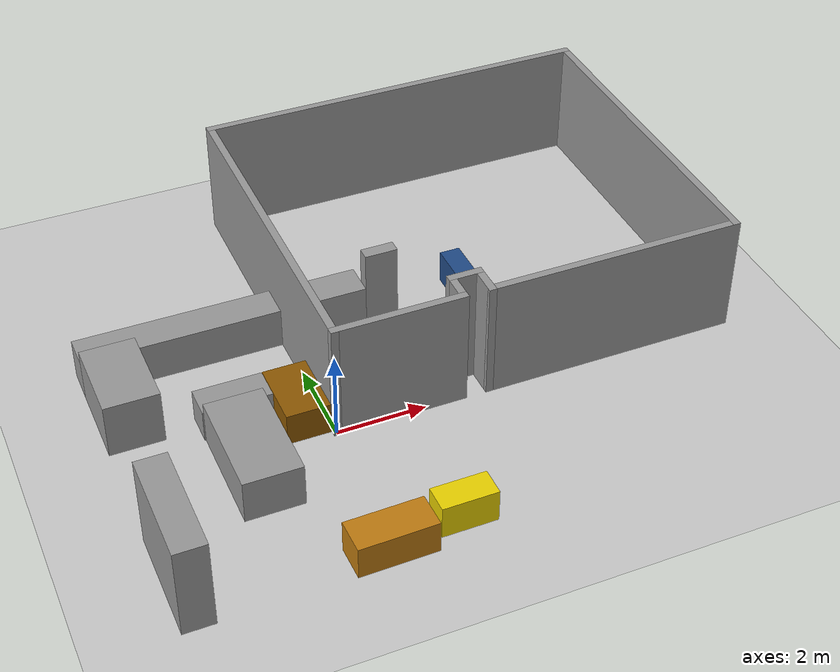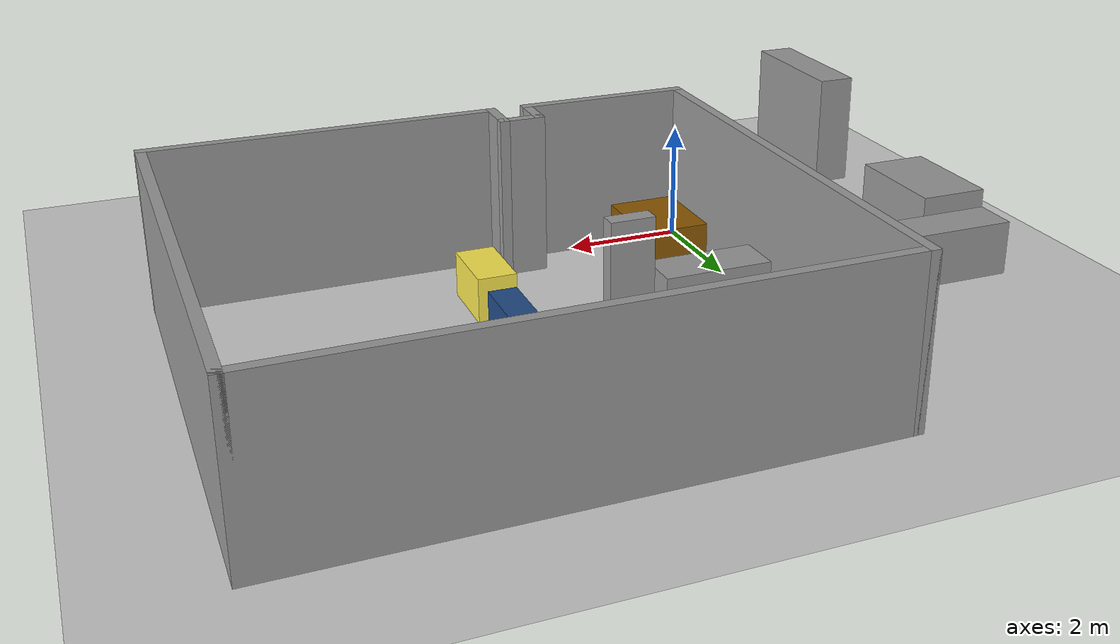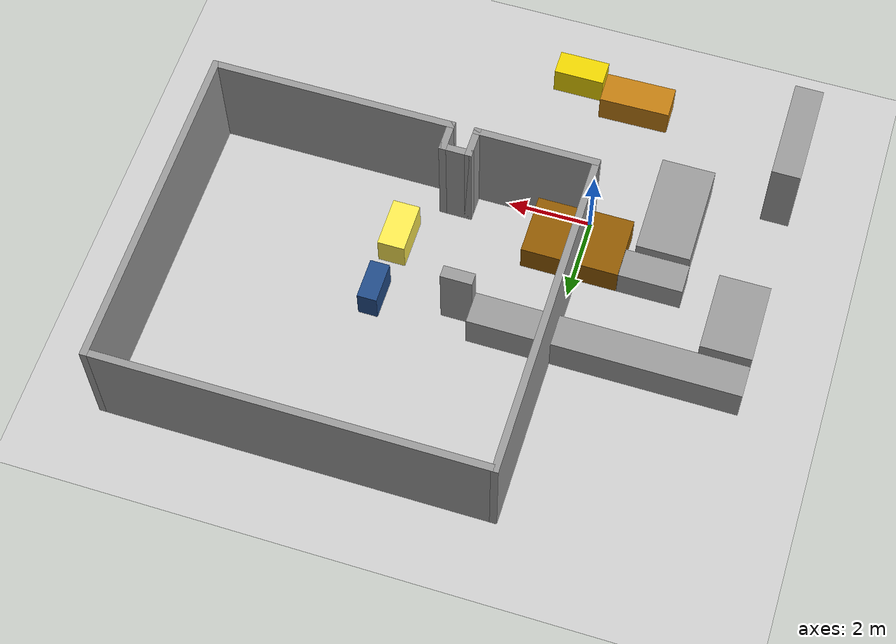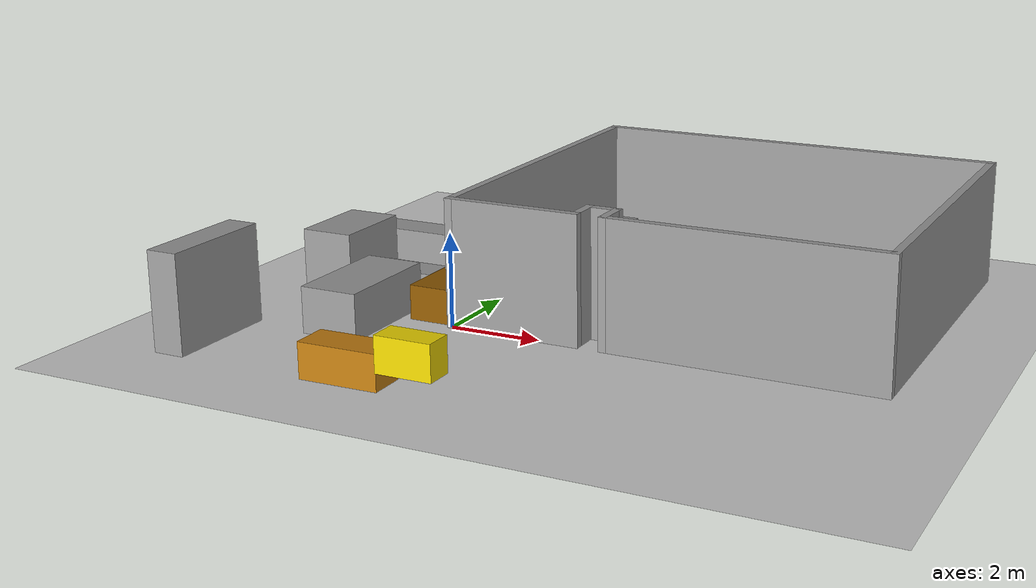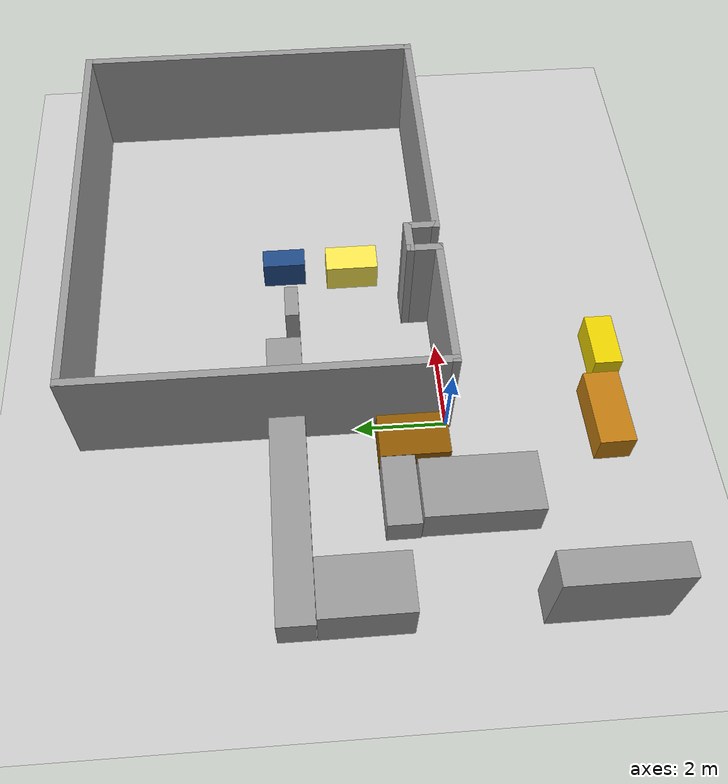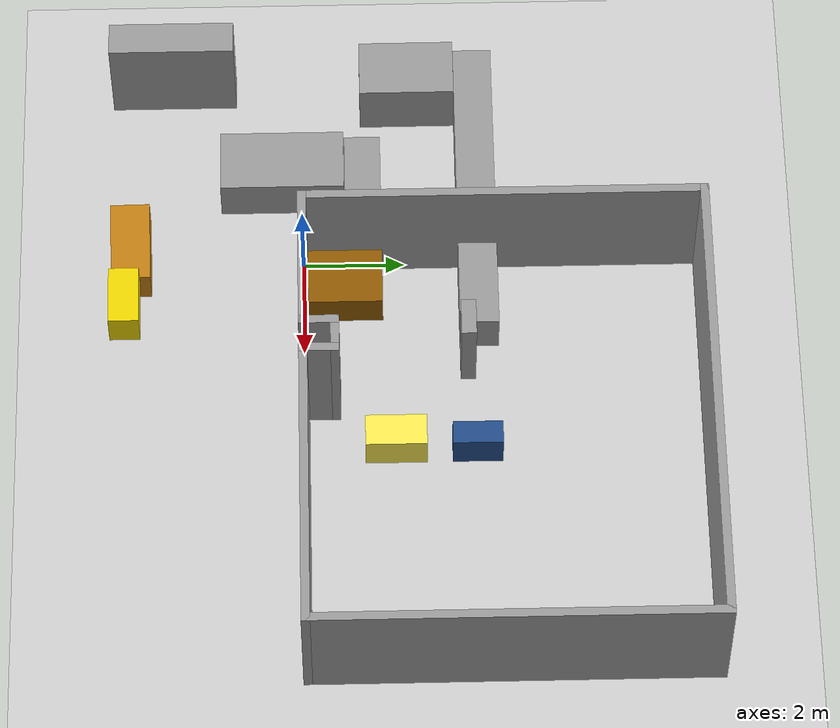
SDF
<sdf version="1.7">
 <world name="default">
  <scene><ambient>0.4 0.4 0.4 1</ambient><background>0.7 0.7 0.7 1</background><shadows>1</shadows></scene>
  <gravity>0 0 -9.8</gravity>
  <magnetic_field>6e-06 2.3e-05 -4.2e-05</magnetic_field>
  <atmosphere type="adiabatic"/>
  <physics type="ode">
   <max_step_size>0.001</max_step_size>
   <real_time_factor>1</real_time_factor>
   <real_time_update_rate>1000</real_time_update_rate>
  </physics>
  <include><uri>model://ground_plane</uri></include>
  <include><uri>model://sun</uri></include>
  <include><uri>model://lab</uri></include>
  <include>
   <uri>model://motoman_cabinet_and_table</uri>
   <pose>-3.90038 2.11609 0.635 0 -0 0.002242</pose>
  </include>
  <include><uri>model://metal_two_cabinets</uri><pose>-4.15995 -2.60213 1.05 0 -1e-06 -4.9e-05</pose></include>
  <include><uri>model://table_group_middle</uri><pose>0.11 0.809997 0.374995 6e-06 -0 0</pose></include>
  <include><uri>model://motoman_table</uri><pose>-1.81651 1.19792 0.375 -1e-06 0 0</pose></include>
  <include><uri>model://nasa_table</uri><pose>-1.91146 -0.411655 0.499941 4.8e-05 -0 0</pose></include>
  <include><uri>model://wall_table1</uri><pose>-0.212215 -3.44803 0.375 0 -0 0.017066</pose></include>
  <include><uri>model://wall_table2</uri><pose>1.24359 -3.55 0.375 0 -0 0.003502</pose></include>
  <include><uri>model://white_shelf</uri><pose>2.27632 3.22017 0.9075 0 0 -0.000797</pose></include>
  <include><uri>model://refrigarator_table</uri><pose>4.1775 1.77 0.3825 0 0 -4e-06</pose></include>
  <include><uri>model://printer_table</uri><pose>4.26675 3.36145 0.385 0 -0 1.8e-05</pose></include>
  <include><uri>model://kitchen_cabinets</uri><pose>-1.30099 3.45819 0.475 0 -0 -0.000798</pose></include>
 </world>
</sdf>

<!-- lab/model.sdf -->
<sdf version='1.7'>
  <model name='lab'>
    <pose>4.5875 3.9375 0 0 -0 0</pose>
    <link name='Wall_0'>
      <collision name='Wall_0_Collision'>
        <geometry>
          <box>
            <size>8.045 0.17 2.75</size>
          </box>
        </geometry>
        <pose>0 0 1.375 0 -0 0</pose>
      </collision>
      <visual name='Wall_0_Visual'>
        <pose>0 0 1.375 0 -0 0</pose>
        <geometry>
          <box>
            <size>8.045 0.17 2.75</size>
          </box>
        </geometry>
        <material>
          <script>
            <uri>file://media/materials/scripts/gazebo.material</uri>
            <name>Gazebo/Grey</name>
          </script>
          <ambient>1 1 1 1</ambient>
        </material>
        <meta>
          <layer>0</layer>
        </meta>
      </visual>
      <pose>-4.5875 0 0 0 -0 1.5708</pose>
    </link>
    <link name='Wall_1'>
      <collision name='Wall_1_Collision'>
        <geometry>
          <box>
            <size>9.345 0.17 2.75</size>
          </box>
        </geometry>
        <pose>0 0 1.375 0 -0 0</pose>
      </collision>
      <visual name='Wall_1_Visual'>
        <pose>0 0 1.375 0 -0 0</pose>
        <geometry>
          <box>
            <size>9.345 0.17 2.75</size>
          </box>
        </geometry>
        <material>
          <script>
            <uri>file://media/materials/scripts/gazebo.material</uri>
            <name>Gazebo/Grey</name>
          </script>
          <ambient>1 1 1 1</ambient>
        </material>
        <meta>
          <layer>0</layer>
        </meta>
      </visual>
      <pose>0 3.9375 0 0 -0 0</pose>
    </link>
    <link name='Wall_2'>
      <collision name='Wall_2_Collision'>
        <geometry>
          <box>
            <size>8.045 0.17 2.75</size>
          </box>
        </geometry>
        <pose>0 0 1.375 0 -0 0</pose>
      </collision>
      <visual name='Wall_2_Visual'>
        <pose>0 0 1.375 0 -0 0</pose>
        <geometry>
          <box>
            <size>8.045 0.17 2.75</size>
          </box>
        </geometry>
        <material>
          <script>
            <uri>file://media/materials/scripts/gazebo.material</uri>
            <name>Gazebo/Grey</name>
          </script>
          <ambient>1 1 1 1</ambient>
        </material>
        <meta>
          <layer>0</layer>
        </meta>
      </visual>
      <pose>4.5875 0 0 0 -0 -1.5708</pose>
    </link>
    <link name='Wall_3'>
      <collision name='Wall_3_Collision'>
        <geometry>
          <box>
            <size>5.91 0.17 2.75</size>
          </box>
        </geometry>
        <pose>0 0 1.375 0 -0 0</pose>
      </collision>
      <visual name='Wall_3_Visual'>
        <pose>0 0 1.375 0 -0 0</pose>
        <geometry>
          <box>
            <size>5.91 0.17 2.75</size>
          </box>
        </geometry>
        <material>
          <script>
            <uri>file://media/materials/scripts/gazebo.material</uri>
            <name>Gazebo/Grey</name>
          </script>
          <ambient>1 1 1 1</ambient>
        </material>
        <meta>
          <layer>0</layer>
        </meta>
      </visual>
      <pose>1.7175 -3.9375 0 0 -0 3.14159</pose>
    </link>
    <link name='Wall_4'>
      <collision name='Wall_4_Collision'>
        <geometry>
          <box>
            <size>0.785 0.17 2.75</size>
          </box>
        </geometry>
        <pose>0 0 1.375 0 -0 0</pose>
      </collision>
      <visual name='Wall_4_Visual'>
        <pose>0 0 1.375 0 -0 0</pose>
        <geometry>
          <box>
            <size>0.785 0.17 2.75</size>
          </box>
        </geometry>
        <material>
          <script>
            <uri>file://media/materials/scripts/gazebo.material</uri>
            <name>Gazebo/Grey</name>
          </script>
          <ambient>1 1 1 1</ambient>
        </material>
        <meta>
          <layer>0</layer>
        </meta>
      </visual>
      <pose>-1.1525 -3.63 0 0 -0 1.5708</pose>
    </link>
    <link name='Wall_5'>
      <collision name='Wall_5_Collision'>
        <geometry>
          <box>
            <size>0.785 0.17 2.75</size>
          </box>
        </geometry>
        <pose>0 0 1.375 0 -0 0</pose>
      </collision>
      <visual name='Wall_5_Visual'>
        <pose>0 0 1.375 0 -0 0</pose>
        <geometry>
          <box>
            <size>0.785 0.17 2.75</size>
          </box>
        </geometry>
        <material>
          <script>
            <uri>file://media/materials/scripts/gazebo.material</uri>
            <name>Gazebo/Grey</name>
          </script>
          <ambient>1 1 1 1</ambient>
        </material>
        <meta>
          <layer>0</layer>
        </meta>
      </visual>
      <pose>-1.46 -3.3225 0 0 -0 3.14159</pose>
    </link>
    <link name='Wall_6'>
      <collision name='Wall_6_Collision'>
        <geometry>
          <box>
            <size>0.785 0.17 2.75</size>
          </box>
        </geometry>
        <pose>0 0 1.375 0 -0 0</pose>
      </collision>
      <visual name='Wall_6_Visual'>
        <pose>0 0 1.375 0 -0 0</pose>
        <geometry>
          <box>
            <size>0.785 0.17 2.75</size>
          </box>
        </geometry>
        <material>
          <script>
            <uri>file://media/materials/scripts/gazebo.material</uri>
            <name>Gazebo/Grey</name>
          </script>
          <ambient>1 1 1 1</ambient>
        </material>
        <meta>
          <layer>0</layer>
        </meta>
      </visual>
      <pose>-1.7675 -3.63 0 0 -0 -1.5708</pose>
    </link>
    <link name='Wall_7'>
      <collision name='Wall_7_Collision'>
        <geometry>
          <box>
            <size>2.99 0.17 2.75</size>
          </box>
        </geometry>
        <pose>0 0 1.375 0 -0 0</pose>
      </collision>
      <visual name='Wall_7_Visual'>
        <pose>0 0 1.375 0 -0 0</pose>
        <geometry>
          <box>
            <size>2.99 0.17 2.75</size>
          </box>
        </geometry>
        <material>
          <script>
            <uri>file://media/materials/scripts/gazebo.material</uri>
            <name>Gazebo/Grey</name>
          </script>
          <ambient>1 1 1 1</ambient>
        </material>
        <meta>
          <layer>0</layer>
        </meta>
      </visual>
      <pose>-3.1775 -3.9375 0 0 -0 3.14159</pose>
    </link>
    <static>1</static>
  </model>
</sdf>

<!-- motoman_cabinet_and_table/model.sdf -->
<sdf version='1.7'>
  <model name='motoman_cabinet_and_table'>
    <link name='link'>
      <inertial>
        <mass>1</mass>
        <inertia>
          <ixx>0.166667</ixx>
          <ixy>0</ixy>
          <ixz>0</ixz>
          <iyy>0.166667</iyy>
          <iyz>0</iyz>
          <izz>0.166667</izz>
        </inertia>
        <pose>0 0 0 0 -0 0</pose>
      </inertial>
      <self_collide>0</self_collide>
      <enable_wind>0</enable_wind>
      <kinematic>0</kinematic>
      <pose>0 0 0 0 -0 0</pose>
      <gravity>1</gravity>
      <visual name='visual'>
        <geometry>
          <box>
            <size>1.2 1.9 1.27</size>
          </box>
        </geometry>
        <material>
          <script>
            <name>Gazebo/Grey</name>
            <uri>file://media/materials/scripts/gazebo.material</uri>
          </script>
          <shader type='pixel'>
            <normal_map>__default__</normal_map>
          </shader>
          <ambient>0.3 0.3 0.3 1</ambient>
          <diffuse>0.7 0.7 0.7 1</diffuse>
          <specular>0.01 0.01 0.01 1</specular>
          <emissive>0 0 0 1</emissive>
        </material>
        <pose>0 0 0 0 -0 0</pose>
        <transparency>0</transparency>
        <cast_shadows>1</cast_shadows>
      </visual>
      <collision name='collision'>
        <laser_retro>0</laser_retro>
        <max_contacts>10</max_contacts>
        <pose>0 0 0 0 -0 0</pose>
        <geometry>
          <box>
            <size>1.2 1.9 1.27</size>
          </box>
        </geometry>
        <surface>
          <friction>
            <ode>
              <mu>100</mu>
              <mu2>50</mu2>
              <fdir1>0 0 0</fdir1>
              <slip1>0</slip1>
              <slip2>0</slip2>
            </ode>
            <torsional>
              <coefficient>1</coefficient>
              <patch_radius>0</patch_radius>
              <surface_radius>0</surface_radius>
              <use_patch_radius>1</use_patch_radius>
              <ode>
                <slip>0</slip>
              </ode>
            </torsional>
          </friction>
          <bounce>
            <restitution_coefficient>0</restitution_coefficient>
            <threshold>1e+06</threshold>
          </bounce>
          <contact>
            <collide_without_contact>0</collide_without_contact>
            <collide_without_contact_bitmask>1</collide_without_contact_bitmask>
            <collide_bitmask>1</collide_bitmask>
            <ode>
              <soft_cfm>0</soft_cfm>
              <soft_erp>0.2</soft_erp>
              <kp>1e+13</kp>
              <kd>1</kd>
              <max_vel>0.01</max_vel>
              <min_depth>0</min_depth>
            </ode>
            <bullet>
              <split_impulse>1</split_impulse>
              <split_impulse_penetration_threshold>-0.01</split_impulse_penetration_threshold>
              <soft_cfm>0</soft_cfm>
              <soft_erp>0.2</soft_erp>
              <kp>1e+13</kp>
              <kd>1</kd>
            </bullet>
          </contact>
        </surface>
      </collision>
    </link>
    <static>0</static>
    <allow_auto_disable>1</allow_auto_disable>
  </model>
</sdf>

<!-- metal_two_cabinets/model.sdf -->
<sdf version='1.7'>
  <model name='metal_two_cabinets'>
    <link name='link_0'>
      <inertial>
        <mass>6.90915</mass>
        <inertia>
          <ixx>9.92803</ixx>
          <ixy>0</ixy>
          <ixz>0</ixz>
          <iyy>8.50819</iyy>
          <iyz>0</iyz>
          <izz>2.57136</izz>
        </inertia>
        <pose>0 0 0 0 -0 0</pose>
      </inertial>
      <pose>0 0 0 0 -0 0</pose>
      <gravity>1</gravity>
      <self_collide>0</self_collide>
      <kinematic>0</kinematic>
      <enable_wind>0</enable_wind>
      <visual name='visual'>
        <pose>0 0 0 0 -0 0</pose>
        <geometry>
          <box>
            <size>0.68 2.5 2.1</size>
          </box>
        </geometry>
        <material>
          <lighting>1</lighting>
          <script>
            <uri>file://media/materials/scripts/gazebo.material</uri>
            <name>Gazebo/Grey</name>
          </script>
          <shader type='pixel'>
            <normal_map>__default__</normal_map>
          </shader>
          <ambient>0.333 0.341 0.325 1</ambient>
          <diffuse>0.333 0.341 0.325 1</diffuse>
          <specular>0.333 0.341 0.325 1</specular>
          <emissive>0.333 0.341 0.325 1</emissive>
        </material>
        <transparency>0</transparency>
        <cast_shadows>1</cast_shadows>
      </visual>
      <collision name='collision'>
        <laser_retro>0</laser_retro>
        <max_contacts>10</max_contacts>
        <pose>0 0 0 0 -0 0</pose>
        <geometry>
          <box>
            <size>0.68 2.5 2.1</size>
          </box>
        </geometry>
        <surface>
          <friction>
            <ode>
              <mu>100</mu>
              <mu2>50</mu2>
              <fdir1>0 0 0</fdir1>
              <slip1>0</slip1>
              <slip2>0</slip2>
            </ode>
            <torsional>
              <coefficient>1</coefficient>
              <patch_radius>0</patch_radius>
              <surface_radius>0</surface_radius>
              <use_patch_radius>1</use_patch_radius>
              <ode>
                <slip>0</slip>
              </ode>
            </torsional>
          </friction>
          <bounce>
            <restitution_coefficient>0</restitution_coefficient>
            <threshold>1e+06</threshold>
          </bounce>
          <contact>
            <collide_without_contact>0</collide_without_contact>
            <collide_without_contact_bitmask>1</collide_without_contact_bitmask>
            <collide_bitmask>1</collide_bitmask>
            <ode>
              <soft_cfm>0</soft_cfm>
              <soft_erp>0.2</soft_erp>
              <kp>1e+13</kp>
              <kd>1</kd>
              <max_vel>0.01</max_vel>
              <min_depth>0</min_depth>
            </ode>
            <bullet>
              <split_impulse>1</split_impulse>
              <split_impulse_penetration_threshold>-0.01</split_impulse_penetration_threshold>
              <soft_cfm>0</soft_cfm>
              <soft_erp>0.2</soft_erp>
              <kp>1e+13</kp>
              <kd>1</kd>
            </bullet>
          </contact>
        </surface>
      </collision>
    </link>
    <static>0</static>
    <allow_auto_disable>1</allow_auto_disable>
  </model>
</sdf>

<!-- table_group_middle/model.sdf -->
<sdf version='1.7'>
  <model name='table_group_middle'>
    <link name='link'>
      <inertial>
        <mass>1</mass>
        <inertia>
          <ixx>0.166667</ixx>
          <ixy>0</ixy>
          <ixz>0</ixz>
          <iyy>0.166667</iyy>
          <iyz>0</iyz>
          <izz>0.166667</izz>
        </inertia>
        <pose>0 0 0 0 -0 0</pose>
      </inertial>
      <self_collide>0</self_collide>
      <enable_wind>0</enable_wind>
      <kinematic>0</kinematic>
      <pose>0 0 0 0 -0 0</pose>
      <gravity>1</gravity>
      <visual name='visual'>
        <geometry>
          <box>
            <size>2.32 1.5 0.75</size>
          </box>
        </geometry>
        <material>
          <script>
            <name>Gazebo/Grey</name>
            <uri>file://media/materials/scripts/gazebo.material</uri>
          </script>
          <shader type='pixel'>
            <normal_map>__default__</normal_map>
          </shader>
          <ambient>0.561 0.349 0.008 1</ambient>
          <diffuse>0.561 0.349 0.008 1</diffuse>
          <specular>0.561 0.349 0.008 1</specular>
          <emissive>0 0 0 1</emissive>
        </material>
        <pose>0 0 0 0 -0 0</pose>
        <transparency>0</transparency>
        <cast_shadows>1</cast_shadows>
      </visual>
      <collision name='collision'>
        <laser_retro>0</laser_retro>
        <max_contacts>10</max_contacts>
        <pose>0 0 0 0 -0 0</pose>
        <geometry>
          <box>
            <size>2.32 1.5 0.75</size>
          </box>
        </geometry>
        <surface>
          <friction>
            <ode>
              <mu>100</mu>
              <mu2>50</mu2>
              <fdir1>0 0 0</fdir1>
              <slip1>0</slip1>
              <slip2>0</slip2>
            </ode>
            <torsional>
              <coefficient>1</coefficient>
              <patch_radius>0</patch_radius>
              <surface_radius>0</surface_radius>
              <use_patch_radius>1</use_patch_radius>
              <ode>
                <slip>0</slip>
              </ode>
            </torsional>
          </friction>
          <bounce>
            <restitution_coefficient>0</restitution_coefficient>
            <threshold>1e+06</threshold>
          </bounce>
          <contact>
            <collide_without_contact>0</collide_without_contact>
            <collide_without_contact_bitmask>1</collide_without_contact_bitmask>
            <collide_bitmask>1</collide_bitmask>
            <ode>
              <soft_cfm>0</soft_cfm>
              <soft_erp>0.2</soft_erp>
              <kp>1e+13</kp>
              <kd>1</kd>
              <max_vel>0.01</max_vel>
              <min_depth>0</min_depth>
            </ode>
            <bullet>
              <split_impulse>1</split_impulse>
              <split_impulse_penetration_threshold>-0.01</split_impulse_penetration_threshold>
              <soft_cfm>0</soft_cfm>
              <soft_erp>0.2</soft_erp>
              <kp>1e+13</kp>
              <kd>1</kd>
            </bullet>
          </contact>
        </surface>
      </collision>
    </link>
    <static>0</static>
    <allow_auto_disable>1</allow_auto_disable>
  </model>
</sdf>

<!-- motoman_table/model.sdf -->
<sdf version='1.7'>
  <model name='motoman_table'>
    <link name='link'>
      <inertial>
        <mass>1</mass>
        <inertia>
          <ixx>0.166667</ixx>
          <ixy>0</ixy>
          <ixz>0</ixz>
          <iyy>0.166667</iyy>
          <iyz>0</iyz>
          <izz>0.166667</izz>
        </inertia>
        <pose>0 0 0 0 -0 0</pose>
      </inertial>
      <self_collide>0</self_collide>
      <enable_wind>0</enable_wind>
      <kinematic>0</kinematic>
      <pose>0 0 0 0 -0 0</pose>
      <gravity>1</gravity>
      <visual name='visual'>
        <geometry>
          <box>
            <size>1.52 0.72 0.75</size>
          </box>
        </geometry>
        <material>
          <script>
            <name>Gazebo/Grey</name>
            <uri>file://media/materials/scripts/gazebo.material</uri>
          </script>
          <shader type='pixel'>
            <normal_map>__default__</normal_map>
          </shader>
          <ambient>0.827 0.843 0.812 1</ambient>
          <diffuse>0.729 0.741 0.714 1</diffuse>
          <specular>0.01 0.01 0.01 1</specular>
          <emissive>0 0 0 1</emissive>
        </material>
        <pose>0 0 0 0 -0 0</pose>
        <transparency>0</transparency>
        <cast_shadows>1</cast_shadows>
      </visual>
      <collision name='collision'>
        <laser_retro>0</laser_retro>
        <max_contacts>10</max_contacts>
        <pose>0 0 0 0 -0 0</pose>
        <geometry>
          <box>
            <size>1.52 0.72 0.75</size>
          </box>
        </geometry>
        <surface>
          <friction>
            <ode>
              <mu>100</mu>
              <mu2>50</mu2>
              <fdir1>0 0 0</fdir1>
              <slip1>0</slip1>
              <slip2>0</slip2>
            </ode>
            <torsional>
              <coefficient>1</coefficient>
              <patch_radius>0</patch_radius>
              <surface_radius>0</surface_radius>
              <use_patch_radius>1</use_patch_radius>
              <ode>
                <slip>0</slip>
              </ode>
            </torsional>
          </friction>
          <bounce>
            <restitution_coefficient>0</restitution_coefficient>
            <threshold>1e+06</threshold>
          </bounce>
          <contact>
            <collide_without_contact>0</collide_without_contact>
            <collide_without_contact_bitmask>1</collide_without_contact_bitmask>
            <collide_bitmask>1</collide_bitmask>
            <ode>
              <soft_cfm>0</soft_cfm>
              <soft_erp>0.2</soft_erp>
              <kp>1e+13</kp>
              <kd>1</kd>
              <max_vel>0.01</max_vel>
              <min_depth>0</min_depth>
            </ode>
            <bullet>
              <split_impulse>1</split_impulse>
              <split_impulse_penetration_threshold>-0.01</split_impulse_penetration_threshold>
              <soft_cfm>0</soft_cfm>
              <soft_erp>0.2</soft_erp>
              <kp>1e+13</kp>
              <kd>1</kd>
            </bullet>
          </contact>
        </surface>
      </collision>
    </link>
    <static>0</static>
    <allow_auto_disable>1</allow_auto_disable>
  </model>
</sdf>

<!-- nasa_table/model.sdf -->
<sdf version='1.7'>
  <model name='nasa_table'>
    <link name='link'>
      <inertial>
        <mass>1</mass>
        <inertia>
          <ixx>0.166667</ixx>
          <ixy>0</ixy>
          <ixz>0</ixz>
          <iyy>0.166667</iyy>
          <iyz>0</iyz>
          <izz>0.166667</izz>
        </inertia>
        <pose>0 0 0 0 -0 0</pose>
      </inertial>
      <self_collide>0</self_collide>
      <enable_wind>0</enable_wind>
      <kinematic>0</kinematic>
      <pose>0 0 0 0 -0 0</pose>
      <gravity>1</gravity>
      <visual name='visual'>
        <geometry>
          <box>
            <size>1.28 2.47 1</size>
          </box>
        </geometry>
        <material>
          <script>
            <name>Gazebo/Grey</name>
            <uri>file://media/materials/scripts/gazebo.material</uri>
          </script>
          <shader type='pixel'>
            <normal_map>__default__</normal_map>
          </shader>
          <ambient>0.18 0.204 0.212 1</ambient>
          <diffuse>0.18 0.204 0.212 1</diffuse>
          <specular>0.01 0.01 0.01 1</specular>
          <emissive>0 0 0 1</emissive>
        </material>
        <pose>0 0 0 0 -0 0</pose>
        <transparency>0</transparency>
        <cast_shadows>1</cast_shadows>
      </visual>
      <collision name='collision'>
        <laser_retro>0</laser_retro>
        <max_contacts>10</max_contacts>
        <pose>0 0 0 0 -0 0</pose>
        <geometry>
          <box>
            <size>1.28 2.47 1</size>
          </box>
        </geometry>
        <surface>
          <friction>
            <ode>
              <mu>100</mu>
              <mu2>0</mu2>
              <fdir1>0 0 0</fdir1>
              <slip1>0</slip1>
              <slip2>0</slip2>
            </ode>
            <torsional>
              <coefficient>1</coefficient>
              <patch_radius>0</patch_radius>
              <surface_radius>0</surface_radius>
              <use_patch_radius>1</use_patch_radius>
              <ode>
                <slip>0</slip>
              </ode>
            </torsional>
          </friction>
          <bounce>
            <restitution_coefficient>0</restitution_coefficient>
            <threshold>1e+06</threshold>
          </bounce>
          <contact>
            <collide_without_contact>0</collide_without_contact>
            <collide_without_contact_bitmask>1</collide_without_contact_bitmask>
            <collide_bitmask>1</collide_bitmask>
            <ode>
              <soft_cfm>0</soft_cfm>
              <soft_erp>0.2</soft_erp>
              <kp>1e+13</kp>
              <kd>1</kd>
              <max_vel>0.01</max_vel>
              <min_depth>0</min_depth>
            </ode>
            <bullet>
              <split_impulse>1</split_impulse>
              <split_impulse_penetration_threshold>-0.01</split_impulse_penetration_threshold>
              <soft_cfm>0</soft_cfm>
              <soft_erp>0.2</soft_erp>
              <kp>1e+13</kp>
              <kd>1</kd>
            </bullet>
          </contact>
        </surface>
      </collision>
    </link>
    <static>0</static>
    <allow_auto_disable>1</allow_auto_disable>
  </model>
</sdf>

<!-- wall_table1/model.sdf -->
<sdf version='1.7'>
  <model name='wall_table1'>
    <link name='link'>
      <inertial>
        <mass>1</mass>
        <inertia>
          <ixx>0.166667</ixx>
          <ixy>0</ixy>
          <ixz>0</ixz>
          <iyy>0.166667</iyy>
          <iyz>0</iyz>
          <izz>0.166667</izz>
        </inertia>
        <pose>0 0 0 0 -0 0</pose>
      </inertial>
      <self_collide>0</self_collide>
      <enable_wind>0</enable_wind>
      <kinematic>0</kinematic>
      <pose>0 0 0 0 -0 0</pose>
      <gravity>1</gravity>
      <visual name='visual'>
        <geometry>
          <box>
            <size>1.7 0.78 0.75</size>
          </box>
        </geometry>
        <material>
          <script>
            <name>Gazebo/Grey</name>
            <uri>file://media/materials/scripts/gazebo.material</uri>
          </script>
          <shader type='pixel'>
            <normal_map>__default__</normal_map>
          </shader>
          <ambient>0.757 0.49 0.067 1</ambient>
          <diffuse>0.757 0.49 0.067 1</diffuse>
          <specular>0.01 0.01 0.01 1</specular>
          <emissive>0 0 0 1</emissive>
        </material>
        <pose>0 0 0 0 -0 0</pose>
        <transparency>0</transparency>
        <cast_shadows>1</cast_shadows>
      </visual>
      <collision name='collision'>
        <laser_retro>0</laser_retro>
        <max_contacts>10</max_contacts>
        <pose>0 0 0 0 -0 0</pose>
        <geometry>
          <box>
            <size>1.7 0.78 0.75</size>
          </box>
        </geometry>
        <surface>
          <friction>
            <ode>
              <mu>1</mu>
              <mu2>1</mu2>
              <fdir1>0 0 0</fdir1>
              <slip1>0</slip1>
              <slip2>0</slip2>
            </ode>
            <torsional>
              <coefficient>1</coefficient>
              <patch_radius>0</patch_radius>
              <surface_radius>0</surface_radius>
              <use_patch_radius>1</use_patch_radius>
              <ode>
                <slip>0</slip>
              </ode>
            </torsional>
          </friction>
          <bounce>
            <restitution_coefficient>0</restitution_coefficient>
            <threshold>1e+06</threshold>
          </bounce>
          <contact>
            <collide_without_contact>0</collide_without_contact>
            <collide_without_contact_bitmask>1</collide_without_contact_bitmask>
            <collide_bitmask>1</collide_bitmask>
            <ode>
              <soft_cfm>0</soft_cfm>
              <soft_erp>0.2</soft_erp>
              <kp>1e+13</kp>
              <kd>1</kd>
              <max_vel>0.01</max_vel>
              <min_depth>0</min_depth>
            </ode>
            <bullet>
              <split_impulse>1</split_impulse>
              <split_impulse_penetration_threshold>-0.01</split_impulse_penetration_threshold>
              <soft_cfm>0</soft_cfm>
              <soft_erp>0.2</soft_erp>
              <kp>1e+13</kp>
              <kd>1</kd>
            </bullet>
          </contact>
        </surface>
      </collision>
    </link>
    <static>0</static>
    <allow_auto_disable>1</allow_auto_disable>
  </model>
</sdf>

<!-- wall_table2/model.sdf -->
<sdf version='1.7'>
  <model name='wall_table2'>
    <link name='link'>
      <inertial>
        <mass>15</mass>
        <inertia>
          <ixx>15.166667</ixx>
          <ixy>0</ixy>
          <ixz>0</ixz>
          <iyy>15.166667</iyy>
          <iyz>0</iyz>
          <izz>15.166667</izz>
        </inertia>
        <pose>0 0 0.385 0 -0 0</pose>
      </inertial>
      <self_collide>0</self_collide>
      <enable_wind>0</enable_wind>
      <kinematic>0</kinematic>
      <pose>0 0 0 0 -0 0</pose>
      <gravity>1</gravity>
      <visual name='visual'>
        <geometry>
          <box>
            <size>1.2 0.6 0.75</size>
          </box>
        </geometry>
        <material>
          <script>
            <name>Gazebo/Grey</name>
            <uri>file://media/materials/scripts/gazebo.material</uri>
          </script>
          <shader type='pixel'>
            <normal_map>__default__</normal_map>
          </shader>
          <ambient>0.929 0.831 0 1</ambient>
          <diffuse>0.929 0.831 0 1</diffuse>
          <specular>0.01 0.01 0.01 1</specular>
          <emissive>0 0 0 1</emissive>
        </material>
        <pose>0 0 0.385 0 -0 0</pose>
        <transparency>0</transparency>
        <cast_shadows>1</cast_shadows>
      </visual>
      <collision name='collision'>
        <laser_retro>0</laser_retro>
        <max_contacts>10</max_contacts>
        <pose>0 0 0.385 0 -0 0</pose>
        <geometry>
          <box>
            <size>1.2 0.6 0.75</size>
          </box>
        </geometry>
        <surface>
          <friction>
            <ode>
              <mu>100</mu>
              <mu2>50</mu2>
              <fdir1>0 0 0</fdir1>
              <slip1>0</slip1>
              <slip2>0</slip2>
            </ode>
            <torsional>
              <coefficient>1</coefficient>
              <patch_radius>0</patch_radius>
              <surface_radius>0</surface_radius>
              <use_patch_radius>1</use_patch_radius>
              <ode>
                <slip>0</slip>
              </ode>
            </torsional>
          </friction>
          <bounce>
            <restitution_coefficient>0</restitution_coefficient>
            <threshold>1e+06</threshold>
          </bounce>
          <contact>
            <collide_without_contact>0</collide_without_contact>
            <collide_without_contact_bitmask>1</collide_without_contact_bitmask>
            <collide_bitmask>1</collide_bitmask>
            <ode>
              <soft_cfm>0</soft_cfm>
              <soft_erp>0.2</soft_erp>
              <kp>1e+13</kp>
              <kd>1</kd>
              <max_vel>0.01</max_vel>
              <min_depth>0</min_depth>
            </ode>
            <bullet>
              <split_impulse>1</split_impulse>
              <split_impulse_penetration_threshold>-0.01</split_impulse_penetration_threshold>
              <soft_cfm>0</soft_cfm>
              <soft_erp>0.2</soft_erp>
              <kp>1e+13</kp>
              <kd>1</kd>
            </bullet>
          </contact>
        </surface>
      </collision>
    </link>
    <static>0</static>
    <allow_auto_disable>1</allow_auto_disable>
  </model>
</sdf>

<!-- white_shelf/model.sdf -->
<sdf version='1.7'>
  <model name='white_shelf'>
    <link name='link'>
      <inertial>
        <mass>1</mass>
        <inertia>
          <ixx>0.166667</ixx>
          <ixy>0</ixy>
          <ixz>0</ixz>
          <iyy>0.166667</iyy>
          <iyz>0</iyz>
          <izz>0.166667</izz>
        </inertia>
        <pose>0 0 0 0 -0 0</pose>
      </inertial>
      <self_collide>0</self_collide>
      <enable_wind>0</enable_wind>
      <kinematic>0</kinematic>
      <pose>0 0 0 0 -0 0</pose>
      <gravity>1</gravity>
      <visual name='visual'>
        <geometry>
          <box>
            <size>0.755 0.295 1.815</size>
          </box>
        </geometry>
        <material>
          <script>
            <name>Gazebo/Grey</name>
            <uri>file://media/materials/scripts/gazebo.material</uri>
          </script>
          <shader type='pixel'>
            <normal_map>__default__</normal_map>
          </shader>
          <ambient>0.933 0.933 0.925 1</ambient>
          <diffuse>0.933 0.933 0.925 1</diffuse>
          <specular>0.01 0.01 0.01 1</specular>
          <emissive>0 0 0 1</emissive>
        </material>
        <pose>0 0 0 0 -0 0</pose>
        <transparency>0</transparency>
        <cast_shadows>1</cast_shadows>
      </visual>
      <collision name='collision'>
        <laser_retro>0</laser_retro>
        <max_contacts>10</max_contacts>
        <pose>0 0 0 0 -0 0</pose>
        <geometry>
          <box>
            <size>0.755 0.295 1.815</size>
          </box>
        </geometry>
        <surface>
          <friction>
            <ode>
              <mu>1</mu>
              <mu2>1</mu2>
              <fdir1>0 0 0</fdir1>
              <slip1>0</slip1>
              <slip2>0</slip2>
            </ode>
            <torsional>
              <coefficient>1</coefficient>
              <patch_radius>0</patch_radius>
              <surface_radius>0</surface_radius>
              <use_patch_radius>1</use_patch_radius>
              <ode>
                <slip>0</slip>
              </ode>
            </torsional>
          </friction>
          <bounce>
            <restitution_coefficient>0</restitution_coefficient>
            <threshold>1e+06</threshold>
          </bounce>
          <contact>
            <collide_without_contact>0</collide_without_contact>
            <collide_without_contact_bitmask>1</collide_without_contact_bitmask>
            <collide_bitmask>1</collide_bitmask>
            <ode>
              <soft_cfm>0</soft_cfm>
              <soft_erp>0.2</soft_erp>
              <kp>1e+13</kp>
              <kd>1</kd>
              <max_vel>0.01</max_vel>
              <min_depth>0</min_depth>
            </ode>
            <bullet>
              <split_impulse>1</split_impulse>
              <split_impulse_penetration_threshold>-0.01</split_impulse_penetration_threshold>
              <soft_cfm>0</soft_cfm>
              <soft_erp>0.2</soft_erp>
              <kp>1e+13</kp>
              <kd>1</kd>
            </bullet>
          </contact>
        </surface>
      </collision>
    </link>
    <static>0</static>
    <allow_auto_disable>1</allow_auto_disable>
  </model>
</sdf>

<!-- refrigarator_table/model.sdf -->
<sdf version='1.7'>
  <model name='refrigarator_table'>
    <link name='link'>
      <inertial>
        <mass>1</mass>
        <inertia>
          <ixx>0.166667</ixx>
          <ixy>0</ixy>
          <ixz>0</ixz>
          <iyy>0.166667</iyy>
          <iyz>0</iyz>
          <izz>0.166667</izz>
        </inertia>
        <pose>0 0 0 0 -0 0</pose>
      </inertial>
      <self_collide>0</self_collide>
      <enable_wind>0</enable_wind>
      <kinematic>0</kinematic>
      <pose>0 0 0 0 -0 0</pose>
      <gravity>1</gravity>
      <visual name='visual'>
        <geometry>
          <box>
            <size>0.65 1.2 0.765</size>
          </box>
        </geometry>
        <material>
          <script>
            <name>Gazebo/Grey</name>
            <uri>file://media/materials/scripts/gazebo.material</uri>
          </script>
          <shader type='pixel'>
            <normal_map>__default__</normal_map>
          </shader>
          <ambient>0.988 0.914 0.31 1</ambient>
          <diffuse>0.988 0.914 0.31 1</diffuse>
          <specular>0.01 0.01 0.01 1</specular>
          <emissive>0 0 0 1</emissive>
        </material>
        <pose>0 0 0 0 -0 0</pose>
        <transparency>0</transparency>
        <cast_shadows>1</cast_shadows>
      </visual>
      <collision name='collision'>
        <laser_retro>0</laser_retro>
        <max_contacts>10</max_contacts>
        <pose>0 0 0 0 -0 0</pose>
        <geometry>
          <box>
            <size>0.65 1.2 0.765</size>
          </box>
        </geometry>
        <surface>
          <friction>
            <ode>
              <mu>100</mu>
              <mu2>50</mu2>
              <fdir1>0 0 0</fdir1>
              <slip1>0</slip1>
              <slip2>0</slip2>
            </ode>
            <torsional>
              <coefficient>1</coefficient>
              <patch_radius>0</patch_radius>
              <surface_radius>0</surface_radius>
              <use_patch_radius>1</use_patch_radius>
              <ode>
                <slip>0</slip>
              </ode>
            </torsional>
          </friction>
          <bounce>
            <restitution_coefficient>0</restitution_coefficient>
            <threshold>1e+06</threshold>
          </bounce>
          <contact>
            <collide_without_contact>0</collide_without_contact>
            <collide_without_contact_bitmask>1</collide_without_contact_bitmask>
            <collide_bitmask>1</collide_bitmask>
            <ode>
              <soft_cfm>0</soft_cfm>
              <soft_erp>0.2</soft_erp>
              <kp>1e+13</kp>
              <kd>1</kd>
              <max_vel>0.01</max_vel>
              <min_depth>0</min_depth>
            </ode>
            <bullet>
              <split_impulse>1</split_impulse>
              <split_impulse_penetration_threshold>-0.01</split_impulse_penetration_threshold>
              <soft_cfm>0</soft_cfm>
              <soft_erp>0.2</soft_erp>
              <kp>1e+13</kp>
              <kd>1</kd>
            </bullet>
          </contact>
        </surface>
      </collision>
    </link>
    <static>0</static>
    <allow_auto_disable>1</allow_auto_disable>
  </model>
</sdf>

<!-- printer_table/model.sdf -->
<sdf version='1.7'>
  <model name='printer_table'>
    <link name='link'>
      <inertial>
        <mass>1</mass>
        <inertia>
          <ixx>0.166667</ixx>
          <ixy>0</ixy>
          <ixz>0</ixz>
          <iyy>0.166667</iyy>
          <iyz>0</iyz>
          <izz>0.166667</izz>
        </inertia>
        <pose>0 0 0 0 -0 0</pose>
      </inertial>
      <self_collide>0</self_collide>
      <enable_wind>0</enable_wind>
      <kinematic>0</kinematic>
      <pose>0 0 0 0 -0 0</pose>
      <gravity>1</gravity>
      <visual name='visual'>
        <geometry>
          <box>
            <size>0.47 0.98 0.77</size>
          </box>
        </geometry>
        <material>
          <script>
            <name>Gazebo/Grey</name>
            <uri>file://media/materials/scripts/gazebo.material</uri>
          </script>
          <shader type='pixel'>
            <normal_map>__default__</normal_map>
          </shader>
          <ambient>0.125 0.29 0.529 1</ambient>
          <diffuse>0.125 0.29 0.529 1</diffuse>
          <specular>0.01 0.01 0.01 1</specular>
          <emissive>0 0 0 1</emissive>
        </material>
        <pose>0 0 0 0 -0 0</pose>
        <transparency>0</transparency>
        <cast_shadows>1</cast_shadows>
      </visual>
      <collision name='collision'>
        <laser_retro>0</laser_retro>
        <max_contacts>10</max_contacts>
        <pose>0 0 0 0 -0 0</pose>
        <geometry>
          <box>
            <size>0.47 0.98 0.77</size>
          </box>
        </geometry>
        <surface>
          <friction>
            <ode>
              <mu>1</mu>
              <mu2>1</mu2>
              <fdir1>0 0 0</fdir1>
              <slip1>0</slip1>
              <slip2>0</slip2>
            </ode>
            <torsional>
              <coefficient>1</coefficient>
              <patch_radius>0</patch_radius>
              <surface_radius>0</surface_radius>
              <use_patch_radius>1</use_patch_radius>
              <ode>
                <slip>0</slip>
              </ode>
            </torsional>
          </friction>
          <bounce>
            <restitution_coefficient>0</restitution_coefficient>
            <threshold>1e+06</threshold>
          </bounce>
          <contact>
            <collide_without_contact>0</collide_without_contact>
            <collide_without_contact_bitmask>1</collide_without_contact_bitmask>
            <collide_bitmask>1</collide_bitmask>
            <ode>
              <soft_cfm>0</soft_cfm>
              <soft_erp>0.2</soft_erp>
              <kp>1e+13</kp>
              <kd>1</kd>
              <max_vel>0.01</max_vel>
              <min_depth>0</min_depth>
            </ode>
            <bullet>
              <split_impulse>1</split_impulse>
              <split_impulse_penetration_threshold>-0.01</split_impulse_penetration_threshold>
              <soft_cfm>0</soft_cfm>
              <soft_erp>0.2</soft_erp>
              <kp>1e+13</kp>
              <kd>1</kd>
            </bullet>
          </contact>
        </surface>
      </collision>
    </link>
    <static>0</static>
    <allow_auto_disable>1</allow_auto_disable>
  </model>
</sdf>

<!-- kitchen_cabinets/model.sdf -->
<sdf version='1.7'>
  <model name='kitchen_cabinets'>
    <link name='link'>
      <inertial>
        <mass>36516.5</mass>
        <inertia>
          <ixx>4550.56</ixx>
          <ixy>0</ixy>
          <ixz>0</ixz>
          <iyy>127389</iyy>
          <iyz>0</iyz>
          <izz>126447</izz>
        </inertia>
        <pose>0 0 0 0 -0 0</pose>
      </inertial>
      <self_collide>0</self_collide>
      <enable_wind>0</enable_wind>
      <kinematic>0</kinematic>
      <pose>0 0 0 0 -0 0</pose>
      <gravity>1</gravity>
      <visual name='visual'>
        <geometry>
          <box>
            <size>6.4 0.77 0.95</size>
          </box>
        </geometry>
        <material>
          <script>
            <name>Gazebo/Grey</name>
            <uri>file://media/materials/scripts/gazebo.material</uri>
          </script>
          <shader type='pixel'>
            <normal_map>__default__</normal_map>
          </shader>
          <ambient>0.18 0.204 0.212 1</ambient>
          <diffuse>0.18 0.204 0.212 1</diffuse>
          <specular>0.18 0.204 0.212 1</specular>
          <emissive>0.18 0.204 0.212 1</emissive>
        </material>
        <pose>0 0 0 0 -0 0</pose>
        <transparency>0</transparency>
        <cast_shadows>1</cast_shadows>
      </visual>
      <collision name='collision'>
        <laser_retro>0</laser_retro>
        <max_contacts>10</max_contacts>
        <pose>0 0 0 0 -0 0</pose>
        <geometry>
          <box>
            <size>6.4 0.77 0.95</size>
          </box>
        </geometry>
        <surface>
          <friction>
            <ode>
              <mu>100</mu>
              <mu2>50</mu2>
              <fdir1>0 0 0</fdir1>
              <slip1>0</slip1>
              <slip2>0</slip2>
            </ode>
            <torsional>
              <coefficient>1</coefficient>
              <patch_radius>0</patch_radius>
              <surface_radius>0</surface_radius>
              <use_patch_radius>1</use_patch_radius>
              <ode>
                <slip>0</slip>
              </ode>
            </torsional>
          </friction>
          <bounce>
            <restitution_coefficient>0</restitution_coefficient>
            <threshold>1e+06</threshold>
          </bounce>
          <contact>
            <collide_without_contact>0</collide_without_contact>
            <collide_without_contact_bitmask>1</collide_without_contact_bitmask>
            <collide_bitmask>1</collide_bitmask>
            <ode>
              <soft_cfm>0</soft_cfm>
              <soft_erp>0.2</soft_erp>
              <kp>1e+13</kp>
              <kd>1</kd>
              <max_vel>0.01</max_vel>
              <min_depth>0</min_depth>
            </ode>
            <bullet>
              <split_impulse>1</split_impulse>
              <split_impulse_penetration_threshold>-0.01</split_impulse_penetration_threshold>
              <soft_cfm>0</soft_cfm>
              <soft_erp>0.2</soft_erp>
              <kp>1e+13</kp>
              <kd>1</kd>
            </bullet>
          </contact>
        </surface>
      </collision>
    </link>
    <static>0</static>
    <allow_auto_disable>1</allow_auto_disable>
  </model>
</sdf>
